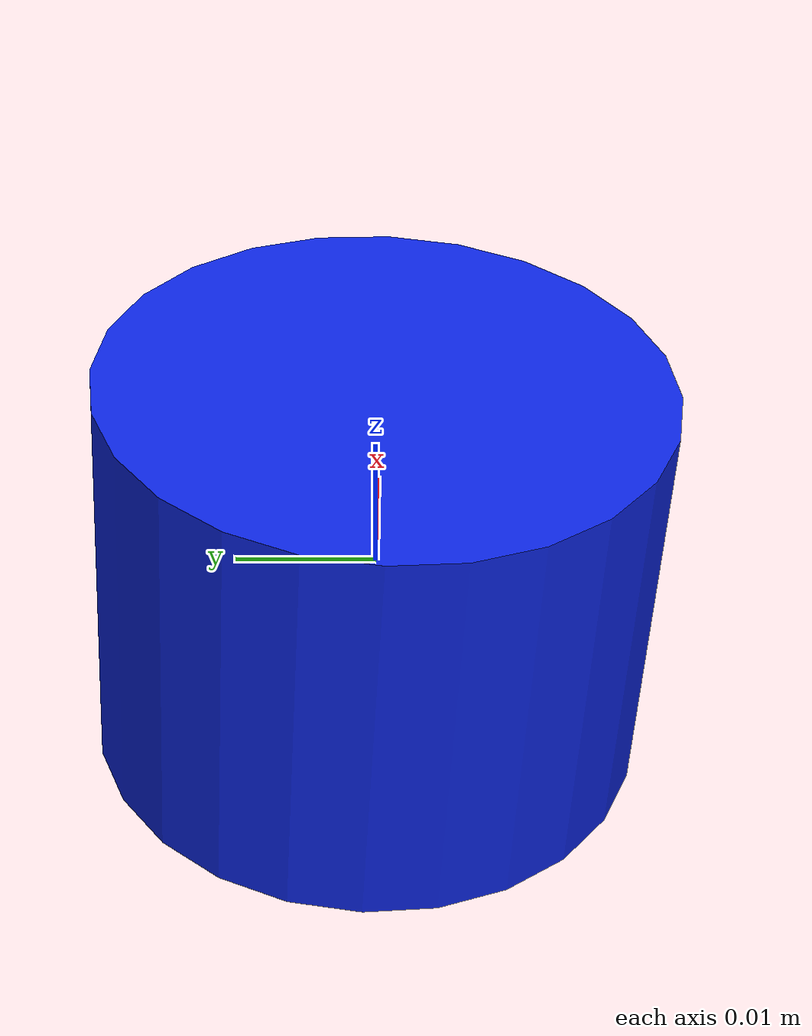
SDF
<?xml version="1.0" ?>
<sdf version="1.8">
  <model name="HUMAN">
  <pose>0 0 0 0.05 0 0</pose>

  <link name="link">
    <inertial>
      <mass>0.02</mass>

      <inertia>
        <ixx>0.000002</ixx>
        <iyy>0.000002</iyy>
        <izz>0.000004</izz>
      </inertia>
    </inertial>

    <collision name="collision">
      <geometry>
        <cylinder>
          <radius>0.02</radius>
          <length>0.03</length>
        </cylinder>
      </geometry>
    </collision>

    <visual name="visual">
      <geometry>
        <cylinder>
          <radius>0.02</radius>
          <length>0.03</length>
        </cylinder>
      </geometry>

      <material>
        <ambient>0.05 0.15 0.9 1</ambient>
        <diffuse>0.05 0.15 0.9 1</diffuse>
      </material>
    </visual>
  </link>
  </model>
</sdf>
